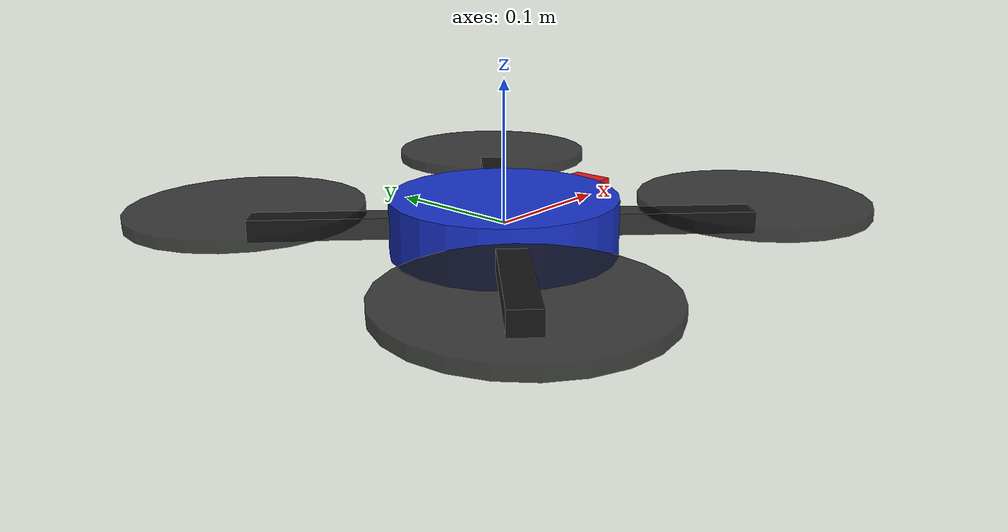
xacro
<robot name="custom_drone">
<xacro:macro name="drone_arm" params="prefix angle">
<link name="arm_${prefix}">
<visual>
<geometry>
<box size="0.35 0.02 0.015"/>
</geometry>
<material name="dark_grey">
<color rgba="0.2 0.2 0.2 1.0"/>
</material>
</visual>
</link>
<joint name="arm_${prefix}_joint" type="fixed">
<parent link="base_link"/>
<child link="arm_${prefix}"/>
<origin xyz="0 0 0" rpy="0 0 ${angle}"/>
</joint>
<link name="rotor_${prefix}">
<visual>
<geometry>
<cylinder radius="0.08" length="0.008"/>
</geometry>
<material name="black">
<color rgba="0.1 0.1 0.1 0.8"/>
</material>
</visual>
</link>
<joint name="rotor_${prefix}_joint" type="fixed">
<parent link="arm_${prefix}"/>
<child link="rotor_${prefix}"/>
<origin xyz="0.175 0 0.012" rpy="0 0 0"/>
</joint>
</xacro:macro>
<link name="base_link">
<inertial>
<mass value="1.2"/>
<origin xyz="0 0 0" rpy="0 0 0"/>
<inertia ixx="0.02" ixy="0" ixz="0" iyy="0.02" iyz="0" izz="0.04"/>
</inertial>
<visual>
<geometry>
<cylinder radius="0.08" length="0.04"/>
</geometry>
<material name="blue">
<color rgba="0.1 0.2 0.8 1.0"/>
</material>
</visual>
<collision>
<geometry>
<box size="0.4 0.4 0.08"/>
</geometry>
</collision>
</link>
<xacro:drone_arm prefix="front_right" angle="${pi/4}"/>
<xacro:drone_arm prefix="front_left" angle="${3*pi/4}"/>
<xacro:drone_arm prefix="back_left" angle="${-3*pi/4}"/>
<xacro:drone_arm prefix="back_right" angle="${-pi/4}"/>
<!-- 前方カメラ -->
<link name="camera_link">
<visual>
<geometry>
<box size="0.03 0.03 0.03"/>
</geometry>
<material name="red">
<color rgba="0.9 0.1 0.1 1.0"/>
</material>
</visual>
</link>
<joint name="camera_joint" type="fixed">
<parent link="base_link"/>
<child link="camera_link"/>
<origin xyz="0.09 0 0" rpy="0 0 0"/>
</joint>
<!-- カメラプラグイン -->
<gazebo reference="camera_link">
<sensor type="camera" name="front_camera">
<update_rate>30.0</update_rate>
<camera name="head">
<horizontal_fov>1.3962634</horizontal_fov>
<image>
<width>640</width>
<height>480</height>
<format>R8G8B8</format>
</image>
<clip>
<near>0.02</near>
<far>300</far>
</clip>
</camera>
<plugin name="camera_controller" filename="libgazebo_ros_camera.so">
<ros>
<remapping>~/image_raw:=/drone/front_camera/image_raw</remapping>
</ros>
<camera_name>front_camera</camera_name>
<frame_name>camera_link</frame_name>
</plugin>
</sensor>
</gazebo>
<!-- ドローンの無重力化設定 -->
<gazebo reference="base_link">
<gravity>0</gravity>
</gazebo>
</robot>
